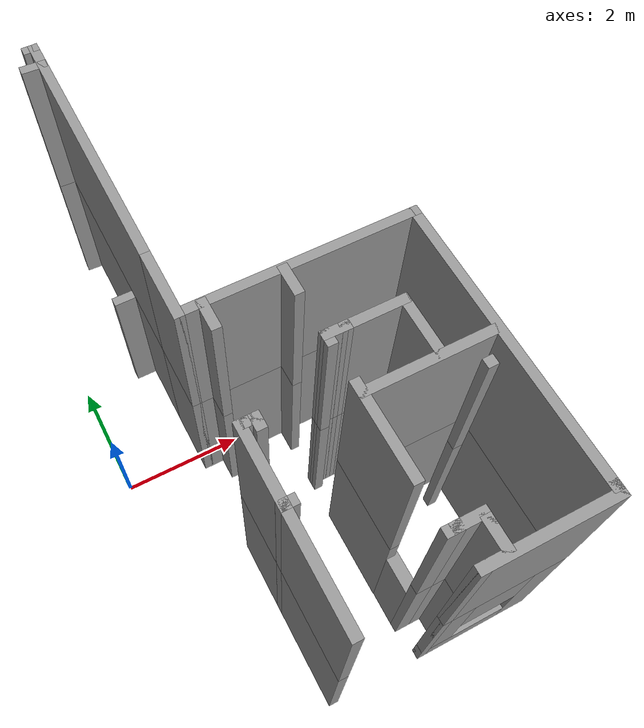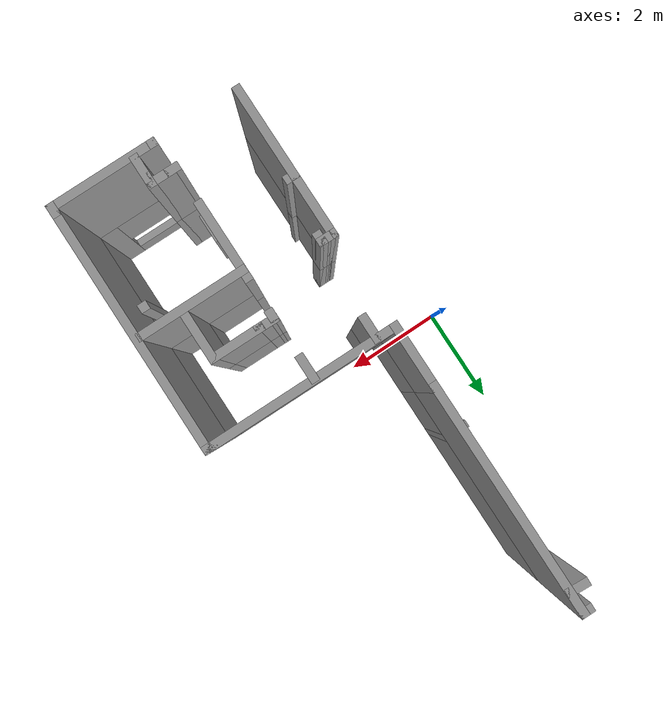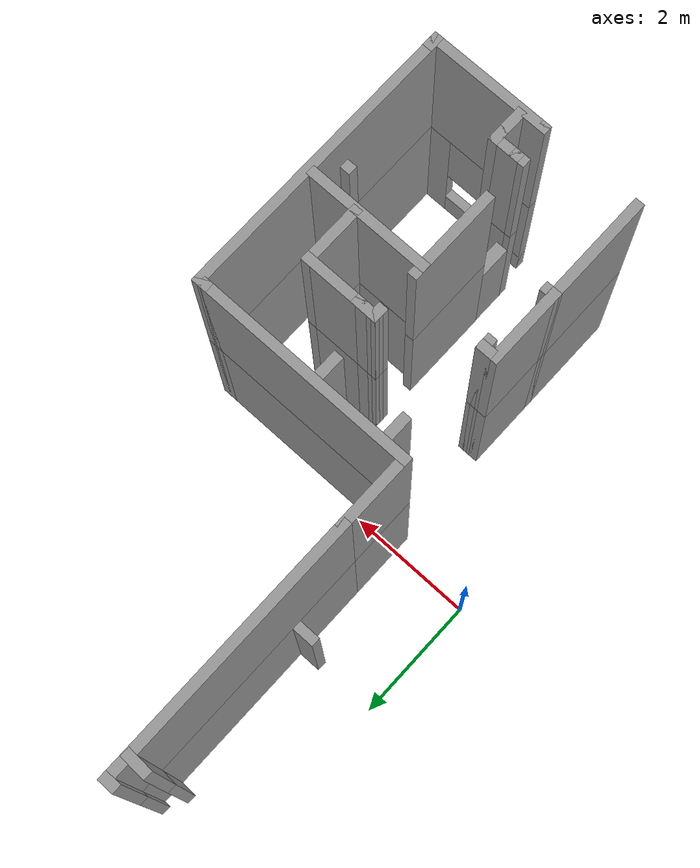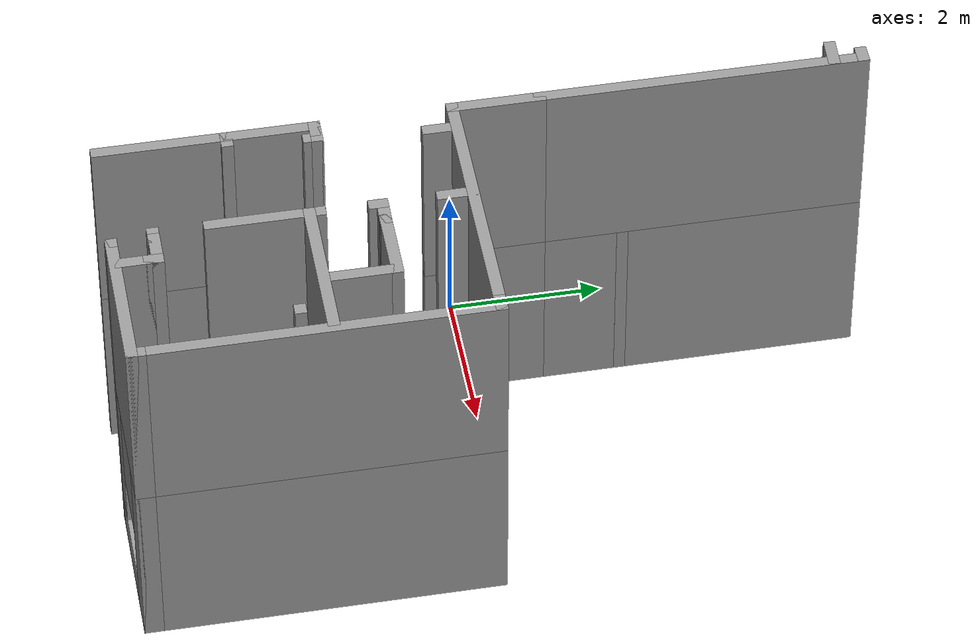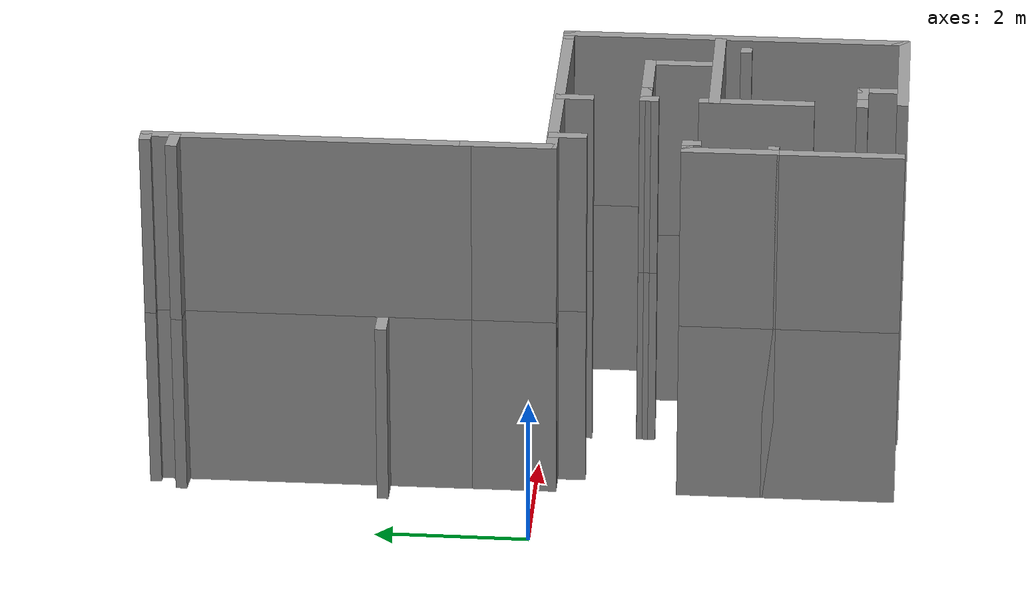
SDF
<sdf version="1.6">
 <model name="2storeyBuilding">
  <pose>-0.004073 0.180036 0 0 -0 0</pose>
  <link name="Door_0">
   <collision name="Door_0_Collision">
    <geometry><box><size>0.601658 0.2 2</size></box></geometry>
    <pose>0 0 1 0 -0 0</pose>
   </collision>
   <visual name="Door_0_Visual">
    <pose>0 0 1 0 -0 0</pose>
    <geometry><box><size>0.601658 0.2 2</size></box></geometry>
    <material>
     <script><uri>file://media/materials/scripts/gazebo.material</uri><name>Gazebo/Grey</name></script>
    </material>
   </visual>
   <pose>2.90552 -3.93307 0 0 -0 1.56893</pose>
  </link>
  <link name="Wall_10">
   <collision name="Wall_10_Collision">
    <geometry><box><size>0.25 0.15 2.5</size></box></geometry>
    <pose>0 0 1.25 0 -0 0</pose>
   </collision>
   <visual name="Wall_10_Visual">
    <pose>0 0 1.25 0 -0 0</pose>
    <geometry><box><size>0.25 0.15 2.5</size></box></geometry>
    <material>
     <script><uri>file://media/materials/scripts/gazebo.material</uri><name>Gazebo/Grey</name></script>
     <ambient>1 1 1 1</ambient>
    </material>
    <meta><layer>0</layer></meta>
   </visual>
   <pose>1.55282 -2.10282 0 0 -0 0</pose>
  </link>
  <link name="Wall_102">
   <collision name="Wall_102_Collision">
    <geometry><box><size>0.25 0.15 2.5</size></box></geometry>
    <pose>0 0 1.25 0 -0 0</pose>
   </collision>
   <visual name="Wall_102_Visual">
    <pose>0 0 1.25 0 -0 0</pose>
    <geometry><box><size>0.25 0.15 2.5</size></box></geometry>
    <material>
     <script><uri>file://media/materials/scripts/gazebo.material</uri><name>Gazebo/Grey</name></script>
     <ambient>1 1 1 1</ambient>
    </material>
    <meta><layer>1</layer></meta>
   </visual>
   <pose>1.325 4.825 2.5 0 -0 0</pose>
  </link>
  <link name="Wall_103">
   <collision name="Wall_103_Collision">
    <geometry><box><size>4.25 0.15 2.5</size></box></geometry>
    <pose>0 0 1.25 0 -0 0</pose>
   </collision>
   <visual name="Wall_103_Visual">
    <pose>0 0 1.25 0 -0 0</pose>
    <geometry><box><size>4.25 0.15 2.5</size></box></geometry>
    <material>
     <script><uri>file://media/materials/scripts/gazebo.material</uri><name>Gazebo/Grey</name></script>
     <ambient>1 1 1 1</ambient>
    </material>
    <meta><layer>1</layer></meta>
   </visual>
   <pose>1.375 2.775 2.5 0 -0 -1.5708</pose>
  </link>
  <link name="Wall_104">
   <collision name="Wall_104_Collision">
    <geometry><box><size>1.25 0.15 2.5</size></box></geometry>
    <pose>0 0 1.25 0 -0 0</pose>
   </collision>
   <visual name="Wall_104_Visual">
    <pose>0 0 1.25 0 -0 0</pose>
    <geometry><box><size>1.25 0.15 2.5</size></box></geometry>
    <material>
     <script><uri>file://media/materials/scripts/gazebo.material</uri><name>Gazebo/Grey</name></script>
     <ambient>1 1 1 1</ambient>
    </material>
    <meta><layer>1</layer></meta>
   </visual>
   <pose>1.375 0.175 2.5 0 -0 -1.5708</pose>
  </link>
  <link name="Wall_105">
   <collision name="Wall_105_Collision">
    <geometry><box><size>3.5 0.15 2.5</size></box></geometry>
    <pose>0 0 1.25 0 -0 0</pose>
   </collision>
   <visual name="Wall_105_Visual">
    <pose>0 0 1.25 0 -0 0</pose>
    <geometry><box><size>3.5 0.15 2.5</size></box></geometry>
    <material>
     <script><uri>file://media/materials/scripts/gazebo.material</uri><name>Gazebo/Grey</name></script>
     <ambient>1 1 1 1</ambient>
    </material>
    <meta><layer>1</layer></meta>
   </visual>
   <pose>3.05 -0.375 2.5 0 -0 0</pose>
  </link>
  <link name="Wall_106">
   <collision name="Wall_106_Collision">
    <geometry><box><size>0.25 0.15 2.5</size></box></geometry>
    <pose>0 0 1.25 0 -0 0</pose>
   </collision>
   <visual name="Wall_106_Visual">
    <pose>0 0 1.25 0 -0 0</pose>
    <geometry><box><size>0.25 0.15 2.5</size></box></geometry>
    <material>
     <script><uri>file://media/materials/scripts/gazebo.material</uri><name>Gazebo/Grey</name></script>
     <ambient>1 1 1 1</ambient>
    </material>
    <meta><layer>1</layer></meta>
   </visual>
   <pose>4.775 -0.375 2.5 0 -0 0</pose>
  </link>
  <link name="Wall_107">
   <collision name="Wall_107_Collision">
    <geometry><box><size>4.5 0.15 2.5</size></box></geometry>
    <pose>0 0 1.25 0 -0 0</pose>
   </collision>
   <visual name="Wall_107_Visual">
    <pose>0 0 1.25 0 -0 0</pose>
    <geometry><box><size>4.5 0.15 2.5</size></box></geometry>
    <material>
     <script><uri>file://media/materials/scripts/gazebo.material</uri><name>Gazebo/Grey</name></script>
     <ambient>1 1 1 1</ambient>
    </material>
    <meta><layer>1</layer></meta>
   </visual>
   <pose>4.825 -2.55 2.5 0 -0 -1.5708</pose>
  </link>
  <link name="Wall_108">
   <collision name="Wall_108_Collision">
    <geometry><box><size>0.25 0.15 2.5</size></box></geometry>
    <pose>0 0 1.25 0 -0 0</pose>
   </collision>
   <visual name="Wall_108_Visual">
    <pose>0 0 1.25 0 -0 0</pose>
    <geometry><box><size>0.25 0.15 2.5</size></box></geometry>
    <material>
     <script><uri>file://media/materials/scripts/gazebo.material</uri><name>Gazebo/Grey</name></script>
     <ambient>1 1 1 1</ambient>
    </material>
    <meta><layer>1</layer></meta>
   </visual>
   <pose>4.825 -4.775 2.5 0 -0 -1.5708</pose>
  </link>
  <link name="Wall_109">
   <collision name="Wall_109_Collision">
    <geometry><box><size>2 0.15 2.5</size></box></geometry>
    <pose>0 0 1.25 0 -0 0</pose>
   </collision>
   <visual name="Wall_109_Visual">
    <pose>0 0 1.25 0 -0 0</pose>
    <geometry><box><size>2 0.15 2.5</size></box></geometry>
    <material>
     <script><uri>file://media/materials/scripts/gazebo.material</uri><name>Gazebo/Grey</name></script>
     <ambient>1 1 1 1</ambient>
    </material>
    <meta><layer>1</layer></meta>
   </visual>
   <pose>3.9 -4.825 2.5 0 -0 3.14159</pose>
  </link>
  <link name="Wall_11">
   <collision name="Wall_11_Collision">
    <geometry><box><size>0.25 0.15 2.5</size></box></geometry>
    <pose>0 0 1.25 0 -0 0</pose>
   </collision>
   <visual name="Wall_11_Visual">
    <pose>0 0 1.25 0 -0 0</pose>
    <geometry><box><size>0.25 0.15 2.5</size></box></geometry>
    <material>
     <script><uri>file://media/materials/scripts/gazebo.material</uri><name>Gazebo/Grey</name></script>
     <ambient>1 1 1 1</ambient>
    </material>
    <meta><layer>0</layer></meta>
   </visual>
   <pose>1.60282 -2.15282 0 0 -0 -1.5708</pose>
  </link>
  <link name="Wall_110">
   <collision name="Wall_110_Collision">
    <geometry><box><size>0.15 0.15 2.5</size></box></geometry>
    <pose>0 0 1.25 0 -0 0</pose>
   </collision>
   <visual name="Wall_110_Visual">
    <pose>0 0 1.25 0 -0 0</pose>
    <geometry><box><size>0.15 0.15 2.5</size></box></geometry>
    <material>
     <script><uri>file://media/materials/scripts/gazebo.material</uri><name>Gazebo/Grey</name></script>
     <ambient>1 1 1 1</ambient>
    </material>
    <meta><layer>1</layer></meta>
   </visual>
   <pose>2.975 -4.825 2.5 0 -0 0</pose>
  </link>
  <link name="Wall_111">
   <collision name="Wall_111_Collision">
    <geometry><box><size>0.5 0.15 2.5</size></box></geometry>
    <pose>0 0 1.25 0 -0 0</pose>
   </collision>
   <visual name="Wall_111_Visual">
    <pose>0 0 1.25 0 -0 0</pose>
    <geometry><box><size>0.5 0.15 2.5</size></box></geometry>
    <material>
     <script><uri>file://media/materials/scripts/gazebo.material</uri><name>Gazebo/Grey</name></script>
     <ambient>1 1 1 1</ambient>
    </material>
    <meta><layer>1</layer></meta>
   </visual>
   <pose>3.33055 -4.57949 2.5 0 -0 1.5708</pose>
  </link>
  <link name="Wall_112">
   <collision name="Wall_112_Collision">
    <geometry><box><size>0.25 0.15 2.5</size></box></geometry>
    <pose>0 0 1.25 0 -0 0</pose>
   </collision>
   <visual name="Wall_112_Visual">
    <pose>0 0 1.25 0 -0 0</pose>
    <geometry><box><size>0.25 0.15 2.5</size></box></geometry>
    <material>
     <script><uri>file://media/materials/scripts/gazebo.material</uri><name>Gazebo/Grey</name></script>
     <ambient>1 1 1 1</ambient>
    </material>
    <meta><layer>1</layer></meta>
   </visual>
   <pose>3.33055 -4.35449 2.5 0 -0 1.5708</pose>
  </link>
  <link name="Wall_113">
   <collision name="Wall_113_Collision">
    <geometry><box><size>0.5 0.15 2.5</size></box></geometry>
    <pose>0 0 1.25 0 -0 0</pose>
   </collision>
   <visual name="Wall_113_Visual">
    <pose>0 0 1.25 0 -0 0</pose>
    <geometry><box><size>0.5 0.15 2.5</size></box></geometry>
    <material>
     <script><uri>file://media/materials/scripts/gazebo.material</uri><name>Gazebo/Grey</name></script>
     <ambient>1 1 1 1</ambient>
    </material>
    <meta><layer>1</layer></meta>
   </visual>
   <pose>3.15555 -4.30449 2.5 0 -0 3.14159</pose>
  </link>
  <link name="Wall_114">
   <collision name="Wall_114_Collision">
    <geometry><box><size>0.25 0.15 2.5</size></box></geometry>
    <pose>0 0 1.25 0 -0 0</pose>
   </collision>
   <visual name="Wall_114_Visual">
    <pose>0 0 1.25 0 -0 0</pose>
    <geometry><box><size>0.25 0.15 2.5</size></box></geometry>
    <material>
     <script><uri>file://media/materials/scripts/gazebo.material</uri><name>Gazebo/Grey</name></script>
     <ambient>1 1 1 1</ambient>
    </material>
    <meta><layer>1</layer></meta>
   </visual>
   <pose>2.93055 -4.30449 2.5 0 -0 3.14159</pose>
  </link>
  <link name="Wall_115">
   <collision name="Wall_115_Collision">
    <geometry><box><size>1.5 0.15 2.5</size></box></geometry>
    <pose>0 0 1.25 0 -0 0</pose>
   </collision>
   <visual name="Wall_115_Visual">
    <pose>0 0 1.25 0 -0 0</pose>
    <geometry><box><size>1.5 0.15 2.5</size></box></geometry>
    <material>
     <script><uri>file://media/materials/scripts/gazebo.material</uri><name>Gazebo/Grey</name></script>
     <ambient>1 1 1 1</ambient>
    </material>
    <meta><layer>1</layer></meta>
   </visual>
   <pose>2.87567 -2.93703 2.5 0 -0 -1.5708</pose>
  </link>
  <link name="Wall_116">
   <collision name="Wall_116_Collision">
    <geometry><box><size>2 0.15 2.5</size></box></geometry>
    <pose>0 0 1.25 0 -0 0</pose>
   </collision>
   <visual name="Wall_116_Visual">
    <pose>0 0 1.25 0 -0 0</pose>
    <geometry><box><size>2 0.15 2.5</size></box></geometry>
    <material>
     <script><uri>file://media/materials/scripts/gazebo.material</uri><name>Gazebo/Grey</name></script>
     <ambient>1 1 1 1</ambient>
    </material>
    <meta><layer>1</layer></meta>
   </visual>
   <pose>3.80443 -2.38985 2.5 0 -0 0</pose>
  </link>
  <link name="Wall_117">
   <collision name="Wall_117_Collision">
    <geometry><box><size>1 0.15 2.5</size></box></geometry>
    <pose>0 0 1.25 0 -0 0</pose>
   </collision>
   <visual name="Wall_117_Visual">
    <pose>0 0 1.25 0 -0 0</pose>
    <geometry><box><size>1 0.15 2.5</size></box></geometry>
    <material>
     <script><uri>file://media/materials/scripts/gazebo.material</uri><name>Gazebo/Grey</name></script>
     <ambient>1 1 1 1</ambient>
    </material>
    <meta><layer>1</layer></meta>
   </visual>
   <pose>3.99596 -1.92349 2.5 0 -0 1.5708</pose>
  </link>
  <link name="Wall_118">
   <collision name="Wall_118_Collision">
    <geometry><box><size>1 0.15 2.5</size></box></geometry>
    <pose>0 0 1.25 0 -0 0</pose>
   </collision>
   <visual name="Wall_118_Visual">
    <pose>0 0 1.25 0 -0 0</pose>
    <geometry><box><size>1 0.15 2.5</size></box></geometry>
    <material>
     <script><uri>file://media/materials/scripts/gazebo.material</uri><name>Gazebo/Grey</name></script>
     <ambient>1 1 1 1</ambient>
    </material>
    <meta><layer>1</layer></meta>
   </visual>
   <pose>3.57096 -1.49849 2.5 0 -0 3.14159</pose>
  </link>
  <link name="Wall_119">
   <collision name="Wall_119_Collision">
    <geometry><box><size>0.15 0.15 2.5</size></box></geometry>
    <pose>0 0 1.25 0 -0 0</pose>
   </collision>
   <visual name="Wall_119_Visual">
    <pose>0 0 1.25 0 -0 0</pose>
    <geometry><box><size>0.15 0.15 2.5</size></box></geometry>
    <material>
     <script><uri>file://media/materials/scripts/gazebo.material</uri><name>Gazebo/Grey</name></script>
     <ambient>1 1 1 1</ambient>
    </material>
    <meta><layer>1</layer></meta>
   </visual>
   <pose>3.14596 -1.49849 2.5 0 -0 0</pose>
  </link>
  <link name="Wall_120">
   <collision name="Wall_120_Collision">
    <geometry><box><size>0.416554 0.15 2.5</size></box></geometry>
    <pose>0 0 1.25 0 -0 0</pose>
   </collision>
   <visual name="Wall_120_Visual">
    <pose>0 0 1.25 0 -0 0</pose>
    <geometry><box><size>0.416554 0.15 2.5</size></box></geometry>
    <material>
     <script><uri>file://media/materials/scripts/gazebo.material</uri><name>Gazebo/Grey</name></script>
     <ambient>1 1 1 1</ambient>
    </material>
    <meta><layer>1</layer></meta>
   </visual>
   <pose>3.01269 -1.4968 2.5 0 -0 3.12892</pose>
  </link>
  <link name="Wall_121">
   <collision name="Wall_121_Collision">
    <geometry><box><size>0.25 0.15 2.5</size></box></geometry>
    <pose>0 0 1.25 0 -0 0</pose>
   </collision>
   <visual name="Wall_121_Visual">
    <pose>0 0 1.25 0 -0 0</pose>
    <geometry><box><size>0.25 0.15 2.5</size></box></geometry>
    <material>
     <script><uri>file://media/materials/scripts/gazebo.material</uri><name>Gazebo/Grey</name></script>
     <ambient>1 1 1 1</ambient>
    </material>
    <meta><layer>1</layer></meta>
   </visual>
   <pose>2.87943 -1.54512 2.5 0 -0 -1.5708</pose>
  </link>
  <link name="Wall_122">
   <collision name="Wall_122_Collision">
    <geometry><box><size>0.5 0.15 2.5</size></box></geometry>
    <pose>0 0 1.25 0 -0 0</pose>
   </collision>
   <visual name="Wall_122_Visual">
    <pose>0 0 1.25 0 -0 0</pose>
    <geometry><box><size>0.5 0.15 2.5</size></box></geometry>
    <material>
     <script><uri>file://media/materials/scripts/gazebo.material</uri><name>Gazebo/Grey</name></script>
     <ambient>1 1 1 1</ambient>
    </material>
    <meta><layer>1</layer></meta>
   </visual>
   <pose>2.86439 -0.57614 2.5 0 -0 -1.5708</pose>
  </link>
  <link name="Wall_123">
   <collision name="Wall_123_Collision">
    <geometry><box><size>0.5 0.15 2.5</size></box></geometry>
    <pose>0 0 1.25 0 -0 0</pose>
   </collision>
   <visual name="Wall_123_Visual">
    <pose>0 0 1.25 0 -0 0</pose>
    <geometry><box><size>0.5 0.15 2.5</size></box></geometry>
    <material>
     <script><uri>file://media/materials/scripts/gazebo.material</uri><name>Gazebo/Grey</name></script>
     <ambient>1 1 1 1</ambient>
    </material>
    <meta><layer>1</layer></meta>
   </visual>
   <pose>1.71402 -0.561102 2.5 0 -0 -1.5708</pose>
  </link>
  <link name="Wall_130">
   <collision name="Wall_130_Collision">
    <geometry><box><size>0.400127 0.15 2.5</size></box></geometry>
    <pose>0 0 1.25 0 -0 0</pose>
   </collision>
   <visual name="Wall_130_Visual">
    <pose>0 0 1.25 0 -0 0</pose>
    <geometry><box><size>0.400127 0.15 2.5</size></box></geometry>
    <material>
     <script><uri>file://media/materials/scripts/gazebo.material</uri><name>Gazebo/Grey</name></script>
     <ambient>1 1 1 1</ambient>
    </material>
    <meta><layer>1</layer></meta>
   </visual>
   <pose>1.238 4.45948 2.5 0 -0 -0.046529</pose>
  </link>
  <link name="Wall_136">
   <collision name="Wall_136_Collision">
    <geometry><box><size>0.157523 0.15 2.5</size></box></geometry>
    <pose>0 0 1.25 0 -0 0</pose>
   </collision>
   <visual name="Wall_136_Visual">
    <pose>0 0 1.25 0 -0 0</pose>
    <geometry><box><size>0.157523 0.15 2.5</size></box></geometry>
    <material>
     <script><uri>file://media/materials/scripts/gazebo.material</uri><name>Gazebo/Grey</name></script>
     <ambient>1 1 1 1</ambient>
    </material>
    <meta><layer>1</layer></meta>
   </visual>
   <pose>4.45997 -2.7438 2.5 0 -0 0</pose>
  </link>
  <link name="Wall_137">
   <collision name="Wall_137_Collision">
    <geometry><box><size>1.75 0.15 2.5</size></box></geometry>
    <pose>0 0 1.25 0 -0 0</pose>
   </collision>
   <visual name="Wall_137_Visual">
    <pose>0 0 1.25 0 -0 0</pose>
    <geometry><box><size>1.75 0.15 2.5</size></box></geometry>
    <material>
     <script><uri>file://media/materials/scripts/gazebo.material</uri><name>Gazebo/Grey</name></script>
     <ambient>1 1 1 1</ambient>
    </material>
    <meta><layer>1</layer></meta>
   </visual>
   <pose>1.40282 -4.00282 2.5 0 -0 -1.5708</pose>
  </link>
  <link name="Wall_25">
   <collision name="Wall_25_Collision">
    <geometry><box><size>0.25 0.15 2.5</size></box></geometry>
    <pose>0 0 1.25 0 -0 0</pose>
   </collision>
   <visual name="Wall_25_Visual">
    <pose>0 0 1.25 0 -0 0</pose>
    <geometry><box><size>0.25 0.15 2.5</size></box></geometry>
    <material>
     <script><uri>file://media/materials/scripts/gazebo.material</uri><name>Gazebo/Grey</name></script>
     <ambient>1 1 1 1</ambient>
    </material>
    <meta><layer>0</layer></meta>
   </visual>
   <pose>1.325 4.825 0 0 -0 0</pose>
  </link>
  <link name="Wall_26">
   <collision name="Wall_26_Collision">
    <geometry><box><size>4.25 0.15 2.5</size></box></geometry>
    <pose>0 0 1.25 0 -0 0</pose>
   </collision>
   <visual name="Wall_26_Visual">
    <pose>0 0 1.25 0 -0 0</pose>
    <geometry><box><size>4.25 0.15 2.5</size></box></geometry>
    <material>
     <script><uri>file://media/materials/scripts/gazebo.material</uri><name>Gazebo/Grey</name></script>
     <ambient>1 1 1 1</ambient>
    </material>
    <meta><layer>0</layer></meta>
   </visual>
   <pose>1.375 2.775 0 0 -0 -1.5708</pose>
  </link>
  <link name="Wall_28">
   <collision name="Wall_28_Collision">
    <geometry><box><size>1.25 0.15 2.5</size></box></geometry>
    <pose>0 0 1.25 0 -0 0</pose>
   </collision>
   <visual name="Wall_28_Visual">
    <pose>0 0 1.25 0 -0 0</pose>
    <geometry><box><size>1.25 0.15 2.5</size></box></geometry>
    <material>
     <script><uri>file://media/materials/scripts/gazebo.material</uri><name>Gazebo/Grey</name></script>
     <ambient>1 1 1 1</ambient>
    </material>
    <meta><layer>0</layer></meta>
   </visual>
   <pose>1.375 0.175 0 0 -0 -1.5708</pose>
  </link>
  <link name="Wall_29">
   <collision name="Wall_29_Collision">
    <geometry><box><size>3.5 0.15 2.5</size></box></geometry>
    <pose>0 0 1.25 0 -0 0</pose>
   </collision>
   <visual name="Wall_29_Visual">
    <pose>0 0 1.25 0 -0 0</pose>
    <geometry><box><size>3.5 0.15 2.5</size></box></geometry>
    <material>
     <script><uri>file://media/materials/scripts/gazebo.material</uri><name>Gazebo/Grey</name></script>
     <ambient>1 1 1 1</ambient>
    </material>
    <meta><layer>0</layer></meta>
   </visual>
   <pose>3.05 -0.375 0 0 -0 0</pose>
  </link>
  <link name="Wall_30">
   <collision name="Wall_30_Collision">
    <geometry><box><size>0.25 0.15 2.5</size></box></geometry>
    <pose>0 0 1.25 0 -0 0</pose>
   </collision>
   <visual name="Wall_30_Visual">
    <pose>0 0 1.25 0 -0 0</pose>
    <geometry><box><size>0.25 0.15 2.5</size></box></geometry>
    <material>
     <script><uri>file://media/materials/scripts/gazebo.material</uri><name>Gazebo/Grey</name></script>
     <ambient>1 1 1 1</ambient>
    </material>
    <meta><layer>0</layer></meta>
   </visual>
   <pose>4.775 -0.375 0 0 -0 0</pose>
  </link>
  <link name="Wall_31">
   <collision name="Wall_31_Collision">
    <geometry><box><size>4.5 0.15 2.5</size></box></geometry>
    <pose>0 0 1.25 0 -0 0</pose>
   </collision>
   <visual name="Wall_31_Visual">
    <pose>0 0 1.25 0 -0 0</pose>
    <geometry><box><size>4.5 0.15 2.5</size></box></geometry>
    <material>
     <script><uri>file://media/materials/scripts/gazebo.material</uri><name>Gazebo/Grey</name></script>
     <ambient>1 1 1 1</ambient>
    </material>
    <meta><layer>0</layer></meta>
   </visual>
   <pose>4.825 -2.55 0 0 -0 -1.5708</pose>
  </link>
  <link name="Wall_32">
   <collision name="Wall_32_Collision">
    <geometry><box><size>0.25 0.15 2.5</size></box></geometry>
    <pose>0 0 1.25 0 -0 0</pose>
   </collision>
   <visual name="Wall_32_Visual">
    <pose>0 0 1.25 0 -0 0</pose>
    <geometry><box><size>0.25 0.15 2.5</size></box></geometry>
    <material>
     <script><uri>file://media/materials/scripts/gazebo.material</uri><name>Gazebo/Grey</name></script>
     <ambient>1 1 1 1</ambient>
    </material>
    <meta><layer>0</layer></meta>
   </visual>
   <pose>4.825 -4.775 0 0 -0 -1.5708</pose>
  </link>
  <link name="Wall_33">
   <pose>3.9 -4.825 0 0 -0 3.14159</pose>
   <visual name="Wall_33_Visual_0">
    <pose>-0.74257 0 1.25 0 -0 0</pose>
    <geometry><box><size>0.514861 0.15 2.5</size></box></geometry>
    <material>
     <script><uri>file://media/materials/scripts/gazebo.material</uri><name>Gazebo/Grey</name></script>
     <ambient>1 1 1 1</ambient>
    </material>
    <meta><layer>0</layer></meta>
   </visual>
   <collision name="Wall_33_Collision_0">
    <geometry><box><size>0.514861 0.15 2.5</size></box></geometry>
    <pose>-0.74257 0 1.25 0 -0 0</pose>
   </collision>
   <visual name="Wall_33_Visual_1">
    <pose>0.25743 0 0.25 0 -0 0</pose>
    <geometry><box><size>1.48514 0.15 0.5</size></box></geometry>
    <material>
     <script><uri>file://media/materials/scripts/gazebo.material</uri><name>Gazebo/Grey</name></script>
     <ambient>1 1 1 1</ambient>
    </material>
    <meta><layer>0</layer></meta>
   </visual>
   <collision name="Wall_33_Collision_1">
    <geometry><box><size>1.48514 0.15 0.5</size></box></geometry>
    <pose>0.25743 0 0.25 0 -0 0</pose>
   </collision>
   <visual name="Wall_33_Visual_2">
    <pose>0.736825 0 1.5 0 -0 0</pose>
    <geometry><box><size>0.526349 0.15 2</size></box></geometry>
    <material>
     <script><uri>file://media/materials/scripts/gazebo.material</uri><name>Gazebo/Grey</name></script>
     <ambient>1 1 1 1</ambient>
    </material>
    <meta><layer>0</layer></meta>
   </visual>
   <collision name="Wall_33_Collision_2">
    <geometry><box><size>0.526349 0.15 2</size></box></geometry>
    <pose>0.736825 0 1.5 0 -0 0</pose>
   </collision>
   <visual name="Wall_33_Visual_3">
    <pose>-0.005744 0 1.9 0 -0 0</pose>
    <geometry><box><size>0.95879 0.15 1.2</size></box></geometry>
    <material>
     <script><uri>file://media/materials/scripts/gazebo.material</uri><name>Gazebo/Grey</name></script>
     <ambient>1 1 1 1</ambient>
    </material>
    <meta><layer>0</layer></meta>
   </visual>
   <collision name="Wall_33_Collision_3">
    <geometry><box><size>0.95879 0.15 1.2</size></box></geometry>
    <pose>-0.005744 0 1.9 0 -0 0</pose>
   </collision>
  </link>
  <link name="Wall_35">
   <collision name="Wall_35_Collision">
    <geometry><box><size>0.15 0.15 2.5</size></box></geometry>
    <pose>0 0 1.25 0 -0 0</pose>
   </collision>
   <visual name="Wall_35_Visual">
    <pose>0 0 1.25 0 -0 0</pose>
    <geometry><box><size>0.15 0.15 2.5</size></box></geometry>
    <material>
     <script><uri>file://media/materials/scripts/gazebo.material</uri><name>Gazebo/Grey</name></script>
     <ambient>1 1 1 1</ambient>
    </material>
    <meta><layer>0</layer></meta>
   </visual>
   <pose>2.975 -4.825 0 0 -0 0</pose>
  </link>
  <link name="Wall_37">
   <collision name="Wall_37_Collision">
    <geometry><box><size>0.5 0.15 2.5</size></box></geometry>
    <pose>0 0 1.25 0 -0 0</pose>
   </collision>
   <visual name="Wall_37_Visual">
    <pose>0 0 1.25 0 -0 0</pose>
    <geometry><box><size>0.5 0.15 2.5</size></box></geometry>
    <material>
     <script><uri>file://media/materials/scripts/gazebo.material</uri><name>Gazebo/Grey</name></script>
     <ambient>1 1 1 1</ambient>
    </material>
    <meta><layer>0</layer></meta>
   </visual>
   <pose>3.33055 -4.57949 0 0 -0 1.5708</pose>
  </link>
  <link name="Wall_38">
   <collision name="Wall_38_Collision">
    <geometry><box><size>0.25 0.15 2.5</size></box></geometry>
    <pose>0 0 1.25 0 -0 0</pose>
   </collision>
   <visual name="Wall_38_Visual">
    <pose>0 0 1.25 0 -0 0</pose>
    <geometry><box><size>0.25 0.15 2.5</size></box></geometry>
    <material>
     <script><uri>file://media/materials/scripts/gazebo.material</uri><name>Gazebo/Grey</name></script>
     <ambient>1 1 1 1</ambient>
    </material>
    <meta><layer>0</layer></meta>
   </visual>
   <pose>3.33055 -4.35449 0 0 -0 1.5708</pose>
  </link>
  <link name="Wall_39">
   <collision name="Wall_39_Collision">
    <geometry><box><size>0.5 0.15 2.5</size></box></geometry>
    <pose>0 0 1.25 0 -0 0</pose>
   </collision>
   <visual name="Wall_39_Visual">
    <pose>0 0 1.25 0 -0 0</pose>
    <geometry><box><size>0.5 0.15 2.5</size></box></geometry>
    <material>
     <script><uri>file://media/materials/scripts/gazebo.material</uri><name>Gazebo/Grey</name></script>
     <ambient>1 1 1 1</ambient>
    </material>
    <meta><layer>0</layer></meta>
   </visual>
   <pose>3.15555 -4.30449 0 0 -0 3.14159</pose>
  </link>
  <link name="Wall_40">
   <collision name="Wall_40_Collision">
    <geometry><box><size>0.25 0.15 2.5</size></box></geometry>
    <pose>0 0 1.25 0 -0 0</pose>
   </collision>
   <visual name="Wall_40_Visual">
    <pose>0 0 1.25 0 -0 0</pose>
    <geometry><box><size>0.25 0.15 2.5</size></box></geometry>
    <material>
     <script><uri>file://media/materials/scripts/gazebo.material</uri><name>Gazebo/Grey</name></script>
     <ambient>1 1 1 1</ambient>
    </material>
    <meta><layer>0</layer></meta>
   </visual>
   <pose>2.93055 -4.30449 0 0 -0 3.14159</pose>
  </link>
  <link name="Wall_42">
   <collision name="Wall_42_Collision">
    <geometry><box><size>1.5 0.15 2.5</size></box></geometry>
    <pose>0 0 1.25 0 -0 0</pose>
   </collision>
   <visual name="Wall_42_Visual">
    <pose>0 0 1.25 0 -0 0</pose>
    <geometry><box><size>1.5 0.15 2.5</size></box></geometry>
    <material>
     <script><uri>file://media/materials/scripts/gazebo.material</uri><name>Gazebo/Grey</name></script>
     <ambient>1 1 1 1</ambient>
    </material>
    <meta><layer>0</layer></meta>
   </visual>
   <pose>2.87567 -2.93703 0 0 -0 -1.5708</pose>
  </link>
  <link name="Wall_46">
   <collision name="Wall_46_Collision">
    <geometry><box><size>2 0.15 2.5</size></box></geometry>
    <pose>0 0 1.25 0 -0 0</pose>
   </collision>
   <visual name="Wall_46_Visual">
    <pose>0 0 1.25 0 -0 0</pose>
    <geometry><box><size>2 0.15 2.5</size></box></geometry>
    <material>
     <script><uri>file://media/materials/scripts/gazebo.material</uri><name>Gazebo/Grey</name></script>
     <ambient>1 1 1 1</ambient>
    </material>
    <meta><layer>0</layer></meta>
   </visual>
   <pose>3.80443 -2.38985 0 0 -0 0</pose>
  </link>
  <link name="Wall_48">
   <collision name="Wall_48_Collision">
    <geometry><box><size>1 0.15 2.5</size></box></geometry>
    <pose>0 0 1.25 0 -0 0</pose>
   </collision>
   <visual name="Wall_48_Visual">
    <pose>0 0 1.25 0 -0 0</pose>
    <geometry><box><size>1 0.15 2.5</size></box></geometry>
    <material>
     <script><uri>file://media/materials/scripts/gazebo.material</uri><name>Gazebo/Grey</name></script>
     <ambient>1 1 1 1</ambient>
    </material>
    <meta><layer>0</layer></meta>
   </visual>
   <pose>3.99596 -1.92349 0 0 -0 1.5708</pose>
  </link>
  <link name="Wall_49">
   <collision name="Wall_49_Collision">
    <geometry><box><size>1 0.15 2.5</size></box></geometry>
    <pose>0 0 1.25 0 -0 0</pose>
   </collision>
   <visual name="Wall_49_Visual">
    <pose>0 0 1.25 0 -0 0</pose>
    <geometry><box><size>1 0.15 2.5</size></box></geometry>
    <material>
     <script><uri>file://media/materials/scripts/gazebo.material</uri><name>Gazebo/Grey</name></script>
     <ambient>1 1 1 1</ambient>
    </material>
    <meta><layer>0</layer></meta>
   </visual>
   <pose>3.57096 -1.49849 0 0 -0 3.14159</pose>
  </link>
  <link name="Wall_50">
   <collision name="Wall_50_Collision">
    <geometry><box><size>0.15 0.15 2.5</size></box></geometry>
    <pose>0 0 1.25 0 -0 0</pose>
   </collision>
   <visual name="Wall_50_Visual">
    <pose>0 0 1.25 0 -0 0</pose>
    <geometry><box><size>0.15 0.15 2.5</size></box></geometry>
    <material>
     <script><uri>file://media/materials/scripts/gazebo.material</uri><name>Gazebo/Grey</name></script>
     <ambient>1 1 1 1</ambient>
    </material>
    <meta><layer>0</layer></meta>
   </visual>
   <pose>3.14596 -1.49849 0 0 -0 0</pose>
  </link>
  <link name="Wall_51">
   <collision name="Wall_51_Collision">
    <geometry><box><size>0.416554 0.15 2.5</size></box></geometry>
    <pose>0 0 1.25 0 -0 0</pose>
   </collision>
   <visual name="Wall_51_Visual">
    <pose>0 0 1.25 0 -0 0</pose>
    <geometry><box><size>0.416554 0.15 2.5</size></box></geometry>
    <material>
     <script><uri>file://media/materials/scripts/gazebo.material</uri><name>Gazebo/Grey</name></script>
     <ambient>1 1 1 1</ambient>
    </material>
    <meta><layer>0</layer></meta>
   </visual>
   <pose>3.01269 -1.4968 0 0 -0 3.12892</pose>
  </link>
  <link name="Wall_52">
   <collision name="Wall_52_Collision">
    <geometry><box><size>0.25 0.15 2.5</size></box></geometry>
    <pose>0 0 1.25 0 -0 0</pose>
   </collision>
   <visual name="Wall_52_Visual">
    <pose>0 0 1.25 0 -0 0</pose>
    <geometry><box><size>0.25 0.15 2.5</size></box></geometry>
    <material>
     <script><uri>file://media/materials/scripts/gazebo.material</uri><name>Gazebo/Grey</name></script>
     <ambient>1 1 1 1</ambient>
    </material>
    <meta><layer>0</layer></meta>
   </visual>
   <pose>2.87943 -1.54512 0 0 -0 -1.5708</pose>
  </link>
  <link name="Wall_54">
   <collision name="Wall_54_Collision">
    <geometry><box><size>0.5 0.15 2.5</size></box></geometry>
    <pose>0 0 1.25 0 -0 0</pose>
   </collision>
   <visual name="Wall_54_Visual">
    <pose>0 0 1.25 0 -0 0</pose>
    <geometry><box><size>0.5 0.15 2.5</size></box></geometry>
    <material>
     <script><uri>file://media/materials/scripts/gazebo.material</uri><name>Gazebo/Grey</name></script>
     <ambient>1 1 1 1</ambient>
    </material>
    <meta><layer>0</layer></meta>
   </visual>
   <pose>2.86439 -0.57614 0 0 -0 -1.5708</pose>
  </link>
  <link name="Wall_57">
   <collision name="Wall_57_Collision">
    <geometry><box><size>0.5 0.15 2.5</size></box></geometry>
    <pose>0 0 1.25 0 -0 0</pose>
   </collision>
   <visual name="Wall_57_Visual">
    <pose>0 0 1.25 0 -0 0</pose>
    <geometry><box><size>0.5 0.15 2.5</size></box></geometry>
    <material>
     <script><uri>file://media/materials/scripts/gazebo.material</uri><name>Gazebo/Grey</name></script>
     <ambient>1 1 1 1</ambient>
    </material>
    <meta><layer>0</layer></meta>
   </visual>
   <pose>1.71402 -0.561102 0 0 -0 -1.5708</pose>
  </link>
  <link name="Wall_6">
   <collision name="Wall_6_Collision">
    <geometry><box><size>0.25 0.15 2.5</size></box></geometry>
    <pose>0 0 1.25 0 -0 0</pose>
   </collision>
   <visual name="Wall_6_Visual">
    <pose>0 0 1.25 0 -0 0</pose>
    <geometry><box><size>0.25 0.15 2.5</size></box></geometry>
    <material>
     <script><uri>file://media/materials/scripts/gazebo.material</uri><name>Gazebo/Grey</name></script>
     <ambient>1 1 1 1</ambient>
    </material>
    <meta><layer>0</layer></meta>
   </visual>
   <pose>1.45282 -3.20282 0 0 -0 3.14159</pose>
  </link>
  <link name="Wall_63">
   <collision name="Wall_63_Collision">
    <geometry><box><size>0.5 0.15 2.5</size></box></geometry>
    <pose>0 0 1.25 0 -0 0</pose>
   </collision>
   <visual name="Wall_63_Visual">
    <pose>0 0 1.25 0 -0 0</pose>
    <geometry><box><size>0.5 0.15 2.5</size></box></geometry>
    <material>
     <script><uri>file://media/materials/scripts/gazebo.material</uri><name>Gazebo/Grey</name></script>
     <ambient>1 1 1 1</ambient>
    </material>
    <meta><layer>0</layer></meta>
   </visual>
   <pose>1.20108 1.80388 0 0 -0 3.14159</pose>
  </link>
  <link name="Wall_69">
   <collision name="Wall_69_Collision">
    <geometry><box><size>0.400127 0.15 2.5</size></box></geometry>
    <pose>0 0 1.25 0 -0 0</pose>
   </collision>
   <visual name="Wall_69_Visual">
    <pose>0 0 1.25 0 -0 0</pose>
    <geometry><box><size>0.400127 0.15 2.5</size></box></geometry>
    <material>
     <script><uri>file://media/materials/scripts/gazebo.material</uri><name>Gazebo/Grey</name></script>
     <ambient>1 1 1 1</ambient>
    </material>
    <meta><layer>0</layer></meta>
   </visual>
   <pose>1.238 4.45948 0 0 -0 -0.046529</pose>
  </link>
  <link name="Wall_7">
   <collision name="Wall_7_Collision">
    <geometry><box><size>0.15 0.15 2.5</size></box></geometry>
    <pose>0 0 1.25 0 -0 0</pose>
   </collision>
   <visual name="Wall_7_Visual">
    <pose>0 0 1.25 0 -0 0</pose>
    <geometry><box><size>0.15 0.15 2.5</size></box></geometry>
    <material>
     <script><uri>file://media/materials/scripts/gazebo.material</uri><name>Gazebo/Grey</name></script>
     <ambient>1 1 1 1</ambient>
    </material>
    <meta><layer>0</layer></meta>
   </visual>
   <pose>1.40282 -3.20282 0 0 -0 0</pose>
  </link>
  <link name="Wall_8">
   <collision name="Wall_8_Collision">
    <geometry><box><size>1.25 0.15 2.5</size></box></geometry>
    <pose>0 0 1.25 0 -0 0</pose>
   </collision>
   <visual name="Wall_8_Visual">
    <pose>0 0 1.25 0 -0 0</pose>
    <geometry><box><size>1.25 0.15 2.5</size></box></geometry>
    <material>
     <script><uri>file://media/materials/scripts/gazebo.material</uri><name>Gazebo/Grey</name></script>
     <ambient>1 1 1 1</ambient>
    </material>
    <meta><layer>0</layer></meta>
   </visual>
   <pose>1.40282 -2.65282 0 0 -0 1.5708</pose>
  </link>
  <link name="Wall_81">
   <collision name="Wall_81_Collision">
    <geometry><box><size>0.157523 0.15 2.5</size></box></geometry>
    <pose>0 0 1.25 0 -0 0</pose>
   </collision>
   <visual name="Wall_81_Visual">
    <pose>0 0 1.25 0 -0 0</pose>
    <geometry><box><size>0.157523 0.15 2.5</size></box></geometry>
    <material>
     <script><uri>file://media/materials/scripts/gazebo.material</uri><name>Gazebo/Grey</name></script>
     <ambient>1 1 1 1</ambient>
    </material>
    <meta><layer>0</layer></meta>
   </visual>
   <pose>4.45997 -2.7438 0 0 -0 0</pose>
  </link>
  <link name="Wall_83">
   <collision name="Wall_83_Collision">
    <geometry><box><size>1.75 0.15 2.5</size></box></geometry>
    <pose>0 0 1.25 0 -0 0</pose>
   </collision>
   <visual name="Wall_83_Visual">
    <pose>0 0 1.25 0 -0 0</pose>
    <geometry><box><size>1.75 0.15 2.5</size></box></geometry>
    <material>
     <script><uri>file://media/materials/scripts/gazebo.material</uri><name>Gazebo/Grey</name></script>
     <ambient>1 1 1 1</ambient>
    </material>
    <meta><layer>0</layer></meta>
   </visual>
   <pose>1.40282 -4.00282 0 0 -0 -1.5708</pose>
  </link>
  <link name="Wall_86">
   <collision name="Wall_86_Collision">
    <geometry><box><size>0.25 0.15 2.5</size></box></geometry>
    <pose>0 0 1.25 0 -0 0</pose>
   </collision>
   <visual name="Wall_86_Visual">
    <pose>0 0 1.25 0 -0 0</pose>
    <geometry><box><size>0.25 0.15 2.5</size></box></geometry>
    <material>
     <script><uri>file://media/materials/scripts/gazebo.material</uri><name>Gazebo/Grey</name></script>
     <ambient>1 1 1 1</ambient>
    </material>
    <meta><layer>1</layer></meta>
   </visual>
   <pose>1.45282 -3.20282 2.5 0 -0 3.14159</pose>
  </link>
  <link name="Wall_87">
   <collision name="Wall_87_Collision">
    <geometry><box><size>0.15 0.15 2.5</size></box></geometry>
    <pose>0 0 1.25 0 -0 0</pose>
   </collision>
   <visual name="Wall_87_Visual">
    <pose>0 0 1.25 0 -0 0</pose>
    <geometry><box><size>0.15 0.15 2.5</size></box></geometry>
    <material>
     <script><uri>file://media/materials/scripts/gazebo.material</uri><name>Gazebo/Grey</name></script>
     <ambient>1 1 1 1</ambient>
    </material>
    <meta><layer>1</layer></meta>
   </visual>
   <pose>1.40282 -3.20282 2.5 0 -0 0</pose>
  </link>
  <link name="Wall_88">
   <collision name="Wall_88_Collision">
    <geometry><box><size>1.25 0.15 2.5</size></box></geometry>
    <pose>0 0 1.25 0 -0 0</pose>
   </collision>
   <visual name="Wall_88_Visual">
    <pose>0 0 1.25 0 -0 0</pose>
    <geometry><box><size>1.25 0.15 2.5</size></box></geometry>
    <material>
     <script><uri>file://media/materials/scripts/gazebo.material</uri><name>Gazebo/Grey</name></script>
     <ambient>1 1 1 1</ambient>
    </material>
    <meta><layer>1</layer></meta>
   </visual>
   <pose>1.40282 -2.65282 2.5 0 -0 1.5708</pose>
  </link>
  <link name="Wall_89">
   <collision name="Wall_89_Collision">
    <geometry><box><size>0.25 0.15 2.5</size></box></geometry>
    <pose>0 0 1.25 0 -0 0</pose>
   </collision>
   <visual name="Wall_89_Visual">
    <pose>0 0 1.25 0 -0 0</pose>
    <geometry><box><size>0.25 0.15 2.5</size></box></geometry>
    <material>
     <script><uri>file://media/materials/scripts/gazebo.material</uri><name>Gazebo/Grey</name></script>
     <ambient>1 1 1 1</ambient>
    </material>
    <meta><layer>1</layer></meta>
   </visual>
   <pose>1.45282 -2.10282 2.5 0 -0 0</pose>
  </link>
  <link name="Wall_9">
   <collision name="Wall_9_Collision">
    <geometry><box><size>0.25 0.15 2.5</size></box></geometry>
    <pose>0 0 1.25 0 -0 0</pose>
   </collision>
   <visual name="Wall_9_Visual">
    <pose>0 0 1.25 0 -0 0</pose>
    <geometry><box><size>0.25 0.15 2.5</size></box></geometry>
    <material>
     <script><uri>file://media/materials/scripts/gazebo.material</uri><name>Gazebo/Grey</name></script>
     <ambient>1 1 1 1</ambient>
    </material>
    <meta><layer>0</layer></meta>
   </visual>
   <pose>1.45282 -2.10282 0 0 -0 0</pose>
  </link>
  <link name="Wall_90">
   <collision name="Wall_90_Collision">
    <geometry><box><size>0.25 0.15 2.5</size></box></geometry>
    <pose>0 0 1.25 0 -0 0</pose>
   </collision>
   <visual name="Wall_90_Visual">
    <pose>0 0 1.25 0 -0 0</pose>
    <geometry><box><size>0.25 0.15 2.5</size></box></geometry>
    <material>
     <script><uri>file://media/materials/scripts/gazebo.material</uri><name>Gazebo/Grey</name></script>
     <ambient>1 1 1 1</ambient>
    </material>
    <meta><layer>1</layer></meta>
   </visual>
   <pose>1.55282 -2.10282 2.5 0 -0 0</pose>
  </link>
  <link name="Wall_91">
   <collision name="Wall_91_Collision">
    <geometry><box><size>0.25 0.15 2.5</size></box></geometry>
    <pose>0 0 1.25 0 -0 0</pose>
   </collision>
   <visual name="Wall_91_Visual">
    <pose>0 0 1.25 0 -0 0</pose>
    <geometry><box><size>0.25 0.15 2.5</size></box></geometry>
    <material>
     <script><uri>file://media/materials/scripts/gazebo.material</uri><name>Gazebo/Grey</name></script>
     <ambient>1 1 1 1</ambient>
    </material>
    <meta><layer>1</layer></meta>
   </visual>
   <pose>1.60282 -2.15282 2.5 0 -0 -1.5708</pose>
  </link>
  <static>1</static>
 </model>
</sdf>
